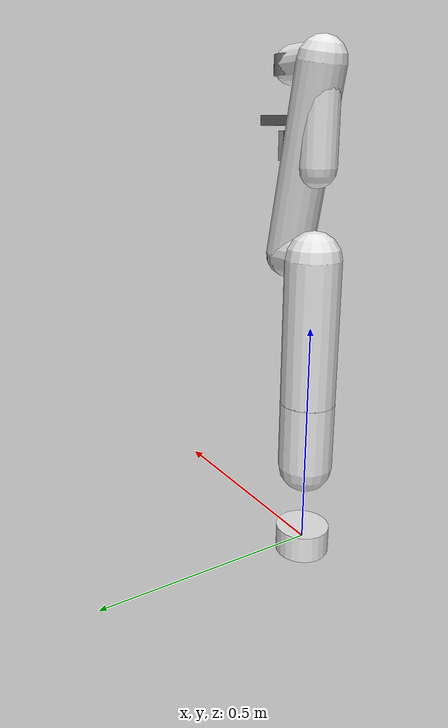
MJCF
<mujoco model="panda">
  <compiler angle="radian" meshdir="." autolimits="true"/>

  <default>
    <joint damping="1.0" armature="0.1"/>
    <geom condim="4" friction="1 0.5 0.01" margin="0.001"/>
    <position kp="100" kv="20"/>
  </default>

  <worldbody>
    <body name="panda_link0" pos="0 0 0">
      <geom type="cylinder" size="0.06 0.03" rgba="0.9 0.9 0.9 1" mass="2.0"/>

      <body name="panda_link1" pos="0 0 0.333">
        <joint name="panda_joint1" type="hinge" axis="0 0 1" range="-2.8973 2.8973"/>
        <geom type="capsule" fromto="0 0 0 0 0 -0.15" size="0.06" rgba="0.9 0.9 0.9 1" mass="2.0"/>

        <body name="panda_link2" pos="0 0 0" quat="0.707107 -0.707107 0 0">
          <joint name="panda_joint2" type="hinge" axis="0 0 1" range="-1.7628 1.7628"/>
          <geom type="capsule" fromto="0 0 0 0 -0.316 0" size="0.06" rgba="0.9 0.9 0.9 1" mass="2.0"/>

          <body name="panda_link3" pos="0 -0.316 0" quat="0.707107 0.707107 0 0">
            <joint name="panda_joint3" type="hinge" axis="0 0 1" range="-2.8973 2.8973"/>
            <geom type="capsule" fromto="0 0 0 0.0825 0 0" size="0.05" rgba="0.9 0.9 0.9 1" mass="1.5"/>

            <body name="panda_link4" pos="0.0825 0 0" quat="0.707107 0.707107 0 0">
              <joint name="panda_joint4" type="hinge" axis="0 0 1" range="-3.0718 -0.0698"/>
              <geom type="capsule" fromto="0 0 0 -0.0825 0.384 0" size="0.05" rgba="0.9 0.9 0.9 1" mass="1.5"/>

              <body name="panda_link5" pos="-0.0825 0.384 0" quat="0.707107 -0.707107 0 0">
                <joint name="panda_joint5" type="hinge" axis="0 0 1" range="-2.8973 2.8973"/>
                <geom type="capsule" fromto="0 0 0 0 0 -0.2" size="0.04" rgba="0.9 0.9 0.9 1" mass="1.0"/>

                <body name="panda_link6" pos="0 0 0" quat="0.707107 0.707107 0 0">
                  <joint name="panda_joint6" type="hinge" axis="0 0 1" range="-0.0175 3.7525"/>
                  <geom type="capsule" fromto="0 0 0 0.088 0 0" size="0.04" rgba="0.9 0.9 0.9 1" mass="1.0"/>

                  <body name="panda_link7" pos="0.088 0 0" quat="0.707107 0.707107 0 0">
                    <joint name="panda_joint7" type="hinge" axis="0 0 1" range="-2.8973 2.8973"/>
                    <geom type="cylinder" size="0.04 0.02" rgba="0.5 0.5 0.5 1" mass="0.5"/>

                    <!-- Flange -->
                    <body name="panda_hand" pos="0 0 0.107" quat="0.924 0 0 0.383">
                      <geom type="box" size="0.03 0.06 0.01" rgba="0.3 0.3 0.3 1" mass="0.5"/>

                      <!-- Left finger -->
                      <body name="panda_leftfinger" pos="0 0.02 0.05">
                        <joint name="panda_finger_joint1" type="slide" axis="0 1 0" range="0 0.04"/>
                        <geom type="box" size="0.01 0.005 0.03" rgba="0.5 0.5 0.5 1" mass="0.1"/>
                      </body>

                      <!-- Right finger -->
                      <body name="panda_rightfinger" pos="0 -0.02 0.05">
                        <joint name="panda_finger_joint2" type="slide" axis="0 -1 0" range="0 0.04"/>
                        <geom type="box" size="0.01 0.005 0.03" rgba="0.5 0.5 0.5 1" mass="0.1"/>
                      </body>

                      <!-- End-effector site for pose tracking -->
                      <site name="end_effector" pos="0 0 0.07" size="0.01" rgba="1 0 0 1"/>
                    </body>
                  </body>
                </body>
              </body>
            </body>
          </body>
        </body>
      </body>
    </body>
  </worldbody>

  <actuator>
    <position joint="panda_joint1" name="actuator1" ctrlrange="-2.8973 2.8973"/>
    <position joint="panda_joint2" name="actuator2" ctrlrange="-1.7628 1.7628"/>
    <position joint="panda_joint3" name="actuator3" ctrlrange="-2.8973 2.8973"/>
    <position joint="panda_joint4" name="actuator4" ctrlrange="-3.0718 -0.0698"/>
    <position joint="panda_joint5" name="actuator5" ctrlrange="-2.8973 2.8973"/>
    <position joint="panda_joint6" name="actuator6" ctrlrange="-0.0175 3.7525"/>
    <position joint="panda_joint7" name="actuator7" ctrlrange="-2.8973 2.8973"/>
    <position joint="panda_finger_joint1" name="actuator_finger1" ctrlrange="0 0.04"/>
    <position joint="panda_finger_joint2" name="actuator_finger2" ctrlrange="0 0.04"/>
  </actuator>
</mujoco>
